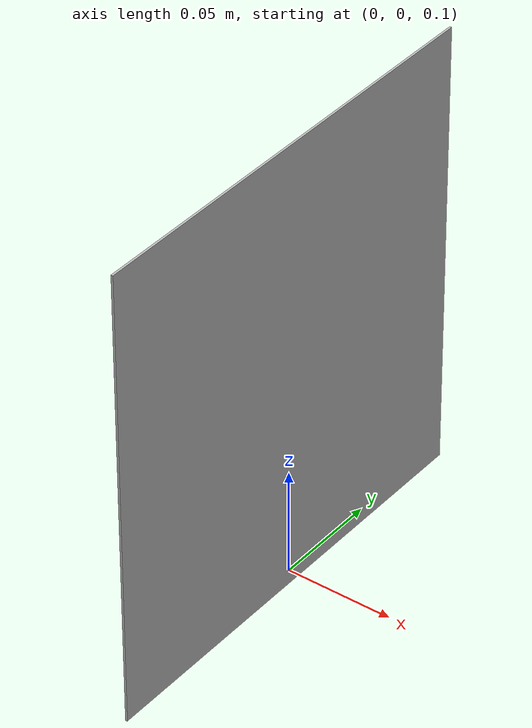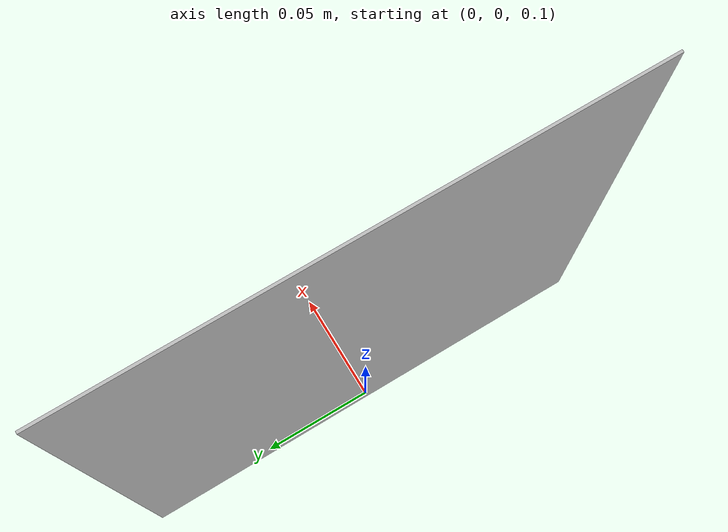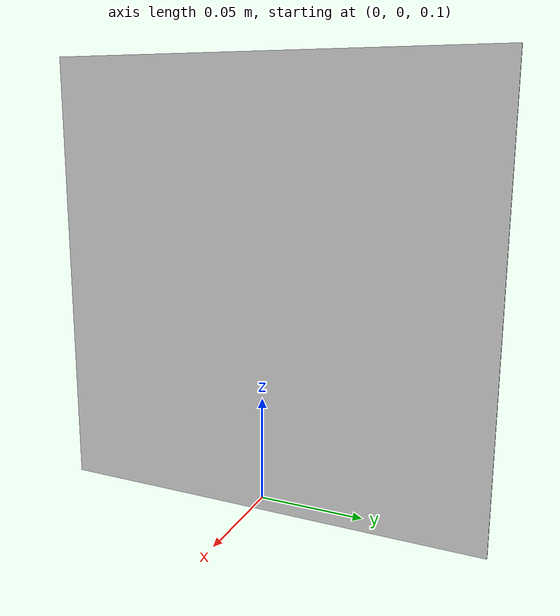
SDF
<?xml version='1.0'?>
<sdf version='1.4'>
  <model name="april_tag_5">
    <static>true</static>
    <pose>0 0 .2 -1.5707963267948966 0 0</pose>
    <link name="tag">
      <pose>0 0 0 0 0 0</pose>
      <visual name='visual'>
        <geometry>
          <mesh>
            <uri>
              model://april_tag_5/meshes/april_tag_5.dae
            </uri>
          </mesh>
        </geometry>
      </visual>
    </link>
  </model>
</sdf>
